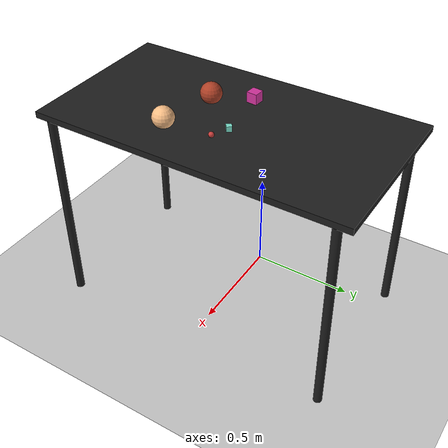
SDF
<?xml version="1.0" ?>
<sdf version="1.6">
  <world name="arm_world">
    <plugin filename="gz-sim-physics-system" name="gz::sim::systems::Physics">
      <engine>
        <filename>libgz-physics-bullet-featherstone-plugin.so</filename>
      </engine>
    </plugin>
    <plugin filename="gz-sim-user-commands-system" name="gz::sim::systems::UserCommands"/>
    <plugin filename="gz-sim-scene-broadcaster-system" name="gz::sim::systems::SceneBroadcaster"/>
    <plugin filename="gz-sim-sensors-system" name="gz::sim::systems::Sensors">
      <render_engine>ogre2</render_engine>
    </plugin>
    <gravity>0.0 0.0 -9.8</gravity>
    <scene>
      <shadows>false</shadows>
    </scene>
    <gui>
      <camera name="user_camera">
        <pose>0.75 -0.75 1.4 0 0.29 2.21</pose>
      </camera>
    </gui>
    <include>
      <uri>https://fuel.gazebosim.org/1.0/OpenRobotics/models/Sun</uri>
    </include>
    <model name="table">
      <static>true</static>
      <include>
        <uri>model://table</uri>
      </include>
      <pose>0.29 0 0 0 0 1.5708</pose>
    </model>
    <model name="ground_plane">
      <static>true</static>
      <link name="link">
        <collision name="collision">
          <geometry>
            <plane>
              <normal>0 0 1</normal>
            </plane>
          </geometry>
          <surface>
            <friction>
              <ode>
                <mu>1.0</mu>
                <mu2>1.0</mu2>
              </ode>
            </friction>
          </surface>
        </collision>
        <visual name="visual">
          <geometry>
            <plane>
              <normal>0 0 1</normal>
              <size>100 100</size>
            </plane>
          </geometry>
          <material>
            <ambient>0.8 0.8 0.8 1</ambient>
            <diffuse>0.8 0.8 0.8 1</diffuse>
            <specular>0.8 0.8 0.8 1</specular>
          </material>
        </visual>
      </link>
    </model>
    <model name="sphere_l_0">
      <pose>0.481 -0.218 1.05 0 0 2.68</pose>
      <link name="sphere_l_0_link">
        <inertial>
          <mass>0.05</mass>
          <inertia>
            <ixx>2.04e-7</ixx>
            <iyy>2.04e-7</iyy>
            <izz>3.9e-8</izz>
            <ixy>0</ixy>
            <ixz>0</ixz>
            <iyz>0</iyz>
          </inertia>
        </inertial>
        <collision name="sphere_l_0_collision">
          <geometry>
            <sphere>
              <radius>0.05</radius>
            </sphere>
          </geometry>
          <surface>
            <friction>
              <ode>
                <mu>0.8</mu>
                <mu2>0.8</mu2>
                <fdir1>0 0 1</fdir1>
                <slip1>0.001</slip1>
                <slip2>0.001</slip2>
              </ode>
              <torsional>
                <coefficient>0.1</coefficient>
                <surface_radius>0.015</surface_radius>
                <use_patch_radius>true</use_patch_radius>
              </torsional>
            </friction>
            <contact>
              <ode>
                <kp>1e5</kp>
                <kd>10</kd>
                <max_vel>0.1</max_vel>
                <min_depth>0.001</min_depth>
                <soft_cfm>0.01</soft_cfm>
                <soft_erp>0.2</soft_erp>
              </ode>
            </contact>
            <bounce>
              <restitution_coefficient>0.2</restitution_coefficient>
              <threshold>0.01</threshold>
            </bounce>
          </surface>
        </collision>
        <visual name="sphere_l_0_visual">
          <geometry>
            <sphere>
              <radius>0.05</radius>
            </sphere>
          </geometry>
          <material>
            <ambient>0.97 0.74 0.52 1</ambient>
            <diffuse>0.97 0.74 0.52 1</diffuse>
          </material>
        </visual>
        <velocity_decay>
          <linear>1</linear>
          <angular>1</angular>
        </velocity_decay>
      </link>
    </model>
    <model name="cube_s_1">
      <pose>0.407 0.06 1.05 0 0 2.22</pose>
      <link name="cube_s_1_link">
        <inertial>
          <mass>0.05</mass>
          <inertia>
            <ixx>2.04e-7</ixx>
            <iyy>2.04e-7</iyy>
            <izz>3.9e-8</izz>
            <ixy>0</ixy>
            <ixz>0</ixz>
            <iyz>0</iyz>
          </inertia>
        </inertial>
        <collision name="cube_s_1_collision">
          <geometry>
            <box>
              <size>0.025 0.025 0.025</size>
            </box>
          </geometry>
          <surface>
            <friction>
              <ode>
                <mu>0.8</mu>
                <mu2>0.8</mu2>
                <fdir1>0 0 1</fdir1>
                <slip1>0.001</slip1>
                <slip2>0.001</slip2>
              </ode>
              <torsional>
                <coefficient>0.1</coefficient>
                <surface_radius>0.015</surface_radius>
                <use_patch_radius>true</use_patch_radius>
              </torsional>
            </friction>
            <contact>
              <ode>
                <kp>1e5</kp>
                <kd>10</kd>
                <max_vel>0.1</max_vel>
                <min_depth>0.001</min_depth>
                <soft_cfm>0.01</soft_cfm>
                <soft_erp>0.2</soft_erp>
              </ode>
            </contact>
            <bounce>
              <restitution_coefficient>0.2</restitution_coefficient>
              <threshold>0.01</threshold>
            </bounce>
          </surface>
        </collision>
        <visual name="cube_s_1_visual">
          <geometry>
            <box>
              <size>0.025 0.025 0.025</size>
            </box>
          </geometry>
          <material>
            <ambient>0.48 0.88 0.8 1</ambient>
            <diffuse>0.48 0.88 0.8 1</diffuse>
          </material>
        </visual>
        <velocity_decay>
          <linear>1</linear>
          <angular>1</angular>
        </velocity_decay>
      </link>
    </model>
    <model name="sphere_s_2">
      <pose>0.488 0.027 1.05 0 0 0.19</pose>
      <link name="sphere_s_2_link">
        <inertial>
          <mass>0.05</mass>
          <inertia>
            <ixx>2.04e-7</ixx>
            <iyy>2.04e-7</iyy>
            <izz>3.9e-8</izz>
            <ixy>0</ixy>
            <ixz>0</ixz>
            <iyz>0</iyz>
          </inertia>
        </inertial>
        <collision name="sphere_s_2_collision">
          <geometry>
            <sphere>
              <radius>0.0125</radius>
            </sphere>
          </geometry>
          <surface>
            <friction>
              <ode>
                <mu>0.8</mu>
                <mu2>0.8</mu2>
                <fdir1>0 0 1</fdir1>
                <slip1>0.001</slip1>
                <slip2>0.001</slip2>
              </ode>
              <torsional>
                <coefficient>0.1</coefficient>
                <surface_radius>0.015</surface_radius>
                <use_patch_radius>true</use_patch_radius>
              </torsional>
            </friction>
            <contact>
              <ode>
                <kp>1e5</kp>
                <kd>10</kd>
                <max_vel>0.1</max_vel>
                <min_depth>0.001</min_depth>
                <soft_cfm>0.01</soft_cfm>
                <soft_erp>0.2</soft_erp>
              </ode>
            </contact>
            <bounce>
              <restitution_coefficient>0.2</restitution_coefficient>
              <threshold>0.01</threshold>
            </bounce>
          </surface>
        </collision>
        <visual name="sphere_s_2_visual">
          <geometry>
            <sphere>
              <radius>0.0125</radius>
            </sphere>
          </geometry>
          <material>
            <ambient>0.78 0.24 0.23 1</ambient>
            <diffuse>0.78 0.24 0.23 1</diffuse>
          </material>
        </visual>
        <velocity_decay>
          <linear>1</linear>
          <angular>1</angular>
        </velocity_decay>
      </link>
    </model>
    <model name="cube_m_3">
      <pose>0.128 0.018 1.05 0 0 4.63</pose>
      <link name="cube_m_3_link">
        <inertial>
          <mass>0.05</mass>
          <inertia>
            <ixx>2.04e-7</ixx>
            <iyy>2.04e-7</iyy>
            <izz>3.9e-8</izz>
            <ixy>0</ixy>
            <ixz>0</ixz>
            <iyz>0</iyz>
          </inertia>
        </inertial>
        <collision name="cube_m_3_collision">
          <geometry>
            <box>
              <size>0.05 0.05 0.05</size>
            </box>
          </geometry>
          <surface>
            <friction>
              <ode>
                <mu>0.8</mu>
                <mu2>0.8</mu2>
                <fdir1>0 0 1</fdir1>
                <slip1>0.001</slip1>
                <slip2>0.001</slip2>
              </ode>
              <torsional>
                <coefficient>0.1</coefficient>
                <surface_radius>0.015</surface_radius>
                <use_patch_radius>true</use_patch_radius>
              </torsional>
            </friction>
            <contact>
              <ode>
                <kp>1e5</kp>
                <kd>10</kd>
                <max_vel>0.1</max_vel>
                <min_depth>0.001</min_depth>
                <soft_cfm>0.01</soft_cfm>
                <soft_erp>0.2</soft_erp>
              </ode>
            </contact>
            <bounce>
              <restitution_coefficient>0.2</restitution_coefficient>
              <threshold>0.01</threshold>
            </bounce>
          </surface>
        </collision>
        <visual name="cube_m_3_visual">
          <geometry>
            <box>
              <size>0.05 0.05 0.05</size>
            </box>
          </geometry>
          <material>
            <ambient>0.83 0.2 0.62 1</ambient>
            <diffuse>0.83 0.2 0.62 1</diffuse>
          </material>
        </visual>
        <velocity_decay>
          <linear>1</linear>
          <angular>1</angular>
        </velocity_decay>
      </link>
    </model>
    <model name="sphere_l_4">
      <pose>0.202 -0.16 1.05 0 0 2.42</pose>
      <link name="sphere_l_4_link">
        <inertial>
          <mass>0.05</mass>
          <inertia>
            <ixx>2.04e-7</ixx>
            <iyy>2.04e-7</iyy>
            <izz>3.9e-8</izz>
            <ixy>0</ixy>
            <ixz>0</ixz>
            <iyz>0</iyz>
          </inertia>
        </inertial>
        <collision name="sphere_l_4_collision">
          <geometry>
            <sphere>
              <radius>0.05</radius>
            </sphere>
          </geometry>
          <surface>
            <friction>
              <ode>
                <mu>0.8</mu>
                <mu2>0.8</mu2>
                <fdir1>0 0 1</fdir1>
                <slip1>0.001</slip1>
                <slip2>0.001</slip2>
              </ode>
              <torsional>
                <coefficient>0.1</coefficient>
                <surface_radius>0.015</surface_radius>
                <use_patch_radius>true</use_patch_radius>
              </torsional>
            </friction>
            <contact>
              <ode>
                <kp>1e5</kp>
                <kd>10</kd>
                <max_vel>0.1</max_vel>
                <min_depth>0.001</min_depth>
                <soft_cfm>0.01</soft_cfm>
                <soft_erp>0.2</soft_erp>
              </ode>
            </contact>
            <bounce>
              <restitution_coefficient>0.2</restitution_coefficient>
              <threshold>0.01</threshold>
            </bounce>
          </surface>
        </collision>
        <visual name="sphere_l_4_visual">
          <geometry>
            <sphere>
              <radius>0.05</radius>
            </sphere>
          </geometry>
          <material>
            <ambient>0.68 0.25 0.15 1</ambient>
            <diffuse>0.68 0.25 0.15 1</diffuse>
          </material>
        </visual>
        <velocity_decay>
          <linear>1</linear>
          <angular>1</angular>
        </velocity_decay>
      </link>
    </model>
  </world>
</sdf>

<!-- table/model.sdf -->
<sdf version="1.5">
  <model name="table">
    <static>true</static>
    <link name="link">
      <collision name="surface">
        <pose>0 0 1.0 0 0 0</pose>
        <geometry>
          <box>
            <size>1.5 0.8 0.03</size>
          </box>
        </geometry>
        <surface>
          <friction>
            <ode>
              <mu>0.6</mu>
              <mu2>0.6</mu2>
            </ode>
          </friction>
        </surface>
      </collision>
      <visual name="surface">
        <pose>0 0 1.0 0 0 0</pose>
        <geometry>
          <box>
            <size>1.5 0.8 0.03</size>
          </box>
        </geometry>
        <material>
          <script>
            <uri>file://media/materials/scripts/gazebo.material</uri>
            <name>Gazebo/Black</name>
          </script>
        </material>
      </visual>
      <collision name="front_left_leg">
        <pose>0.68 0.38 0.5 0 0 0</pose>
        <geometry>
          <cylinder>
            <radius>0.02</radius>
            <length>1.0</length>
          </cylinder>
        </geometry>
      </collision>
      <visual name="front_left_leg">
        <pose>0.68 0.38 0.5 0 0 0</pose>
        <geometry>
          <cylinder>
            <radius>0.02</radius>
            <length>1.0</length>
          </cylinder>
        </geometry>
        <material>
          <script>
            <uri>file://media/materials/scripts/gazebo.material</uri>
            <name>Gazebo/Black</name>
          </script>
        </material>
      </visual>
      <collision name="front_right_leg">
        <pose>0.68 -0.38 0.5 0 0 0</pose>
        <geometry>
          <cylinder>
            <radius>0.02</radius>
            <length>1.0</length>
          </cylinder>
        </geometry>
      </collision>
      <visual name="front_right_leg">
        <pose>0.68 -0.38 0.5 0 0 0</pose>
        <geometry>
          <cylinder>
            <radius>0.02</radius>
            <length>1.0</length>
          </cylinder>
        </geometry>
        <material>
          <script>
            <uri>file://media/materials/scripts/gazebo.material</uri>
            <name>Gazebo/Black</name>
          </script>
        </material>
      </visual>
      <collision name="back_right_leg">
        <pose>-0.68 -0.38 0.5 0 0 0</pose>
        <geometry>
          <cylinder>
            <radius>0.02</radius>
            <length>1.0</length>
          </cylinder>
        </geometry>
      </collision>
      <visual name="back_right_leg">
        <pose>-0.68 -0.38 0.5 0 0 0</pose>
        <geometry>
          <cylinder>
            <radius>0.02</radius>
            <length>1.0</length>
          </cylinder>
        </geometry>
        <material>
          <script>
            <uri>file://media/materials/scripts/gazebo.material</uri>
            <name>Gazebo/Black</name>
          </script>
        </material>
      </visual>
      <collision name="back_left_leg">
        <pose>-0.68 0.38 0.5 0 0 0</pose>
        <geometry>
          <cylinder>
            <radius>0.02</radius>
            <length>1.0</length>
          </cylinder>
        </geometry>
      </collision>
      <visual name="back_left_leg">
        <pose>-0.68 0.38 0.5 0 0 0</pose>
        <geometry>
          <cylinder>
            <radius>0.02</radius>
            <length>1.0</length>
          </cylinder>
        </geometry>
        <material>
          <script>
            <uri>file://media/materials/scripts/gazebo.material</uri>
            <name>Gazebo/Black</name>
          </script>
        </material>
      </visual>
    </link>
  </model>
</sdf>
